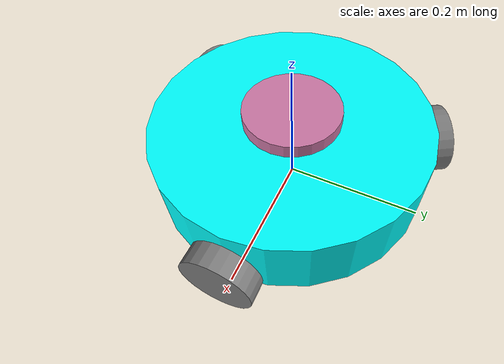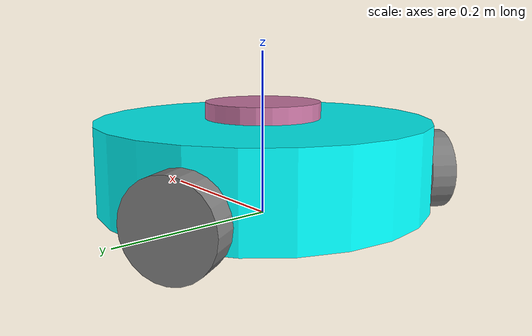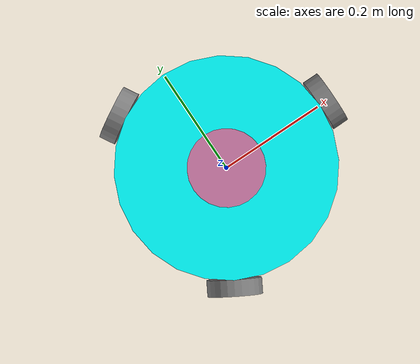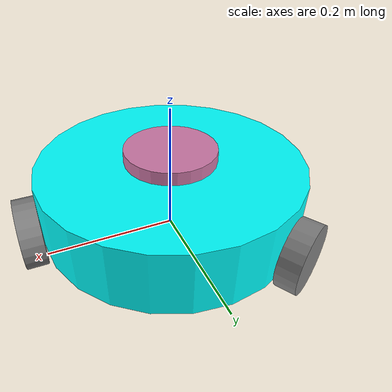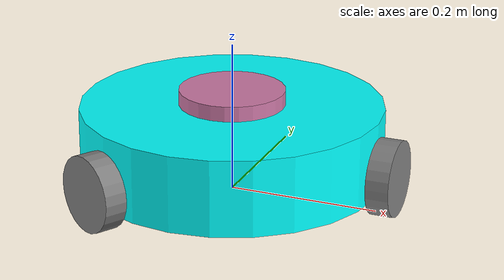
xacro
<?xml version="1.0"?>
<robot name="mobile_bot" xmlns:xacro="http://ros.org/wiki/xacro">
    <!-- Define robot constants -->
    <xacro:property name="base_radius" value="0.20"/>
    <xacro:property name="base_height" value="0.10"/>
    <xacro:property name="base_weight" value="5"/>

    <xacro:property name="wheel_radius" value="0.05"/>
    <xacro:property name="wheel_width" value="0.03"/>
    <xacro:property name="wheel_zoff" value="0.02"/>
    <xacro:property name="wheel_weight" value="2"/>

    <xacro:property name="imu_size" value="0.05"/>
    <xacro:property name="imu_weight" value="0.0001"/>

    <xacro:property name="lidar_radius" value="0.07"/>
    <xacro:property name="lidar_height" value="0.02"/>
    <xacro:property name="lidar_weight" value="0.0001"/>

    <!-- Define intertial property macros -->
    <xacro:macro name="box_inertia" params="m w h d">
        <inertial>
            <origin xyz="0 0 0" rpy="0 0 0"/>
            <mass value="${m}"/>
            <inertia ixx="${(m/12) * (h*h + d*d)}" ixy="0.0" ixz="0.0" iyy="${(m/12) * (w*w + d*d)}" iyz="0.0" izz="${(m/12) * (w*w + h*h)}"/>
        </inertial>
    </xacro:macro>

    <xacro:macro name="cylinder_inertia" params="m r h">
        <inertial>
            <origin xyz="0 0 0" rpy="${pi/2} 0 0"/>
            <mass value="${m}"/>
            <inertia ixx="${(m/12) * (3*r*r + h*h)}" ixy = "0" ixz = "0" iyy="${(m/12) * (3*r*r + h*h)}" iyz = "0" izz="${(m/2) * (r*r)}"/>
        </inertial>
    </xacro:macro>

    <!-- Robot Footprint -->
    <link name="base_footprint">
        <origin xyz="0 0 0"/>
    </link>

    <!-- Base Link -->
    <link name="base_link">
        <visual>
            <origin xyz="0 0 0" rpy="0 0 0"/>
            <geometry>
                <cylinder radius="${base_radius}" length="${base_height}"/>
            </geometry>
            <material name="Cyan">
                <color rgba="0 1.0 1.0 1.0"/>
            </material>
        </visual>
        <collision>
            <origin xyz="0 0 0" rpy="0 0 0"/>
            <geometry>
                <cylinder radius="${base_radius}" length="${base_height}"/>
            </geometry>
        </collision>
        <xacro:cylinder_inertia m="${base_weight}" r="${base_radius}" h="${base_height}"/>
    </link>

    <joint name="base_joint" type="fixed">
        <parent link="base_footprint"/>
        <child link="base_link"/>
        <origin xyz="0 0 ${wheel_radius+wheel_zoff}" rpy="0 0 0"/>
    </joint>

    <!-- Drive Wheels -->
    <xacro:macro name="drive_wheel" params="prefix distance angle">
        <link name="${prefix}_link">
            <visual>
                <origin xyz="0 0 0" rpy="0 ${pi/2} 0"/>
                <geometry>
                    <cylinder radius="${wheel_radius}" length="${wheel_width}"/>
                </geometry>
                <material name="Gray">
                <color rgba="0.5 0.5 0.5 1.0"/>
                </material>
            </visual>
            <collision>
                <origin xyz="0 0 0" rpy="0 ${pi/2} 0"/>
                <geometry>
                <cylinder radius="${wheel_radius}" length="${wheel_width}"/>
                </geometry>
            </collision>
            <xacro:cylinder_inertia m="${wheel_weight}" r="${wheel_radius}" h="${wheel_width}"/>
        </link>

        <joint name="${prefix}_joint" type="fixed">
            <parent link="base_link"/>
            <child link="${prefix}_link"/>
            <origin xyz="${distance*cos(angle)} ${distance*sin(angle)} ${-wheel_zoff}" rpy="0 0 ${angle}"/>
            <axis xyz="0 0 0"/>
        </joint>

        <gazebo reference="${prefix}_link">
            <collision>
                <friction>
                    <ode>
                        <mu>0.0</mu>
                        <mu2>0.0</mu2>
                    </ode>
                </friction>
            </collision>
        </gazebo>
    </xacro:macro>

    <xacro:drive_wheel prefix="drive_wheel_0" distance="${base_radius+wheel_width/2}" angle="0.0"/>
    <xacro:drive_wheel prefix="drive_wheel_120" distance="${base_radius+wheel_width/2}" angle="${2*pi/3}"/>
    <xacro:drive_wheel prefix="drive_wheel_180" distance="${base_radius+wheel_width/2}" angle="${4*pi/3}"/>

    <!-- IMU -->
    <link name="imu_link">
        <visual>
            <origin xyz="0 0 0" rpy="0 0 0"/>
            <geometry>
                <box size="${imu_size} ${imu_size} ${imu_size}"/>
            </geometry>
        </visual>
        <collision>
            <origin xyz="0 0 0" rpy="0 0 0"/>
            <geometry>
                <box size="${imu_size} ${imu_size} ${imu_size}"/>
            </geometry>
        </collision>
        <xacro:box_inertia m="${imu_weight}" w="${imu_size}" d="${imu_size}" h="${imu_size}"/>
    </link>

    <joint name="imu_joint" type="fixed">
        <parent link="base_link"/>
        <child link="imu_link"/>
        <origin xyz="0 0 0"/>
    </joint>

    <gazebo reference="imu_link">
        <sensor name="imu_sensor" type="imu">
            <plugin filename="libgazebo_ros_imu_sensor.so" name="imu_plugin">
                <ros>
                    <remapping>~/out:=imu</remapping>
                </ros>
                <initial_orientation_as_reference>false</initial_orientation_as_reference>
            </plugin>
            <always_on>true</always_on>
            <update_rate>100</update_rate>
            <visualize>true</visualize>
            <imu>
                <angular_velocity>
                    <x>
                        <noise type="gaussian">
                            <mean>0.0</mean>
                            <stddev>2e-4</stddev>
                            <bias_mean>0.0000075</bias_mean>
                            <bias_stddev>0.0000008</bias_stddev>
                        </noise>
                    </x>
                    <y>
                        <noise type="gaussian">
                            <mean>0.0</mean>
                            <stddev>2e-4</stddev>
                            <bias_mean>0.0000075</bias_mean>
                            <bias_stddev>0.0000008</bias_stddev>
                        </noise>
                    </y>
                    <z>
                        <noise type="gaussian">
                            <mean>0.0</mean>
                            <stddev>2e-4</stddev>
                            <bias_mean>0.0000075</bias_mean>
                            <bias_stddev>0.0000008</bias_stddev>
                        </noise>
                    </z>
                </angular_velocity>
                <linear_acceleration>
                    <x>
                        <noise type="gaussian">
                            <mean>0.0</mean>
                            <stddev>1.7e-2</stddev>
                            <bias_mean>0.1</bias_mean>
                            <bias_stddev>0.001</bias_stddev>
                        </noise>
                    </x>
                    <y>
                        <noise type="gaussian">
                            <mean>0.0</mean>
                            <stddev>1.7e-2</stddev>
                            <bias_mean>0.1</bias_mean>
                            <bias_stddev>0.001</bias_stddev>
                        </noise>
                    </y>
                    <z>
                        <noise type="gaussian">
                            <mean>0.0</mean>
                            <stddev>1.7e-2</stddev>
                            <bias_mean>0.1</bias_mean>
                            <bias_stddev>0.001</bias_stddev>
                        </noise>
                    </z>
                </linear_acceleration>
            </imu>
        </sensor>
    </gazebo>

    <!-- Lidar -->
    <link name="lidar_link">
        <visual>
            <origin xyz="0 0 0" rpy="0 0 0"/>
            <geometry>
                <cylinder radius="${lidar_radius}" length="${lidar_height}"/>
            </geometry>
        </visual>
        <collision>
            <origin xyz="0 0 0" rpy="0 0 0"/>
            <geometry>
                <cylinder radius="${lidar_radius}" length="${lidar_height}"/>
            </geometry>
        </collision>
        <xacro:cylinder_inertia m="${lidar_weight}" r="${lidar_radius}" h="${lidar_height}"/>
    </link>

    <joint name="lidar_joint" type="fixed">
        <parent link="base_link"/>
        <child link="lidar_link"/>
        <origin xyz="0 0 ${(base_height/2)+(lidar_height/2)}" rpy="0 0 0"/>
    </joint>

    <gazebo reference="lidar_link">
        <sensor name="lidar" type="ray">
            <always_on>true</always_on>
            <visualize>true</visualize>
            <update_rate>5</update_rate>
            <ray>
                <scan>
                    <horizontal>
                        <samples>360</samples>
                        <resolution>1.000000</resolution>
                        <min_angle>0.000000</min_angle>
                        <max_angle>6.280000</max_angle>
                    </horizontal>
                </scan>
                    <range>
                    <min>0.120000</min>
                    <max>6.0</max>
                    <resolution>0.015000</resolution>
                    </range>
                <noise>
                    <type>gaussian</type>
                    <mean>0.0</mean>
                    <stddev>0.01</stddev>
                </noise>
            </ray>
            <plugin name="scan" filename="libgazebo_ros_ray_sensor.so">
                <ros>
                    <remapping>~/out:=scan</remapping>
                </ros>
                <output_type>sensor_msgs/LaserScan</output_type>
                <frame_name>lidar_link</frame_name>
            </plugin>
        </sensor>
    </gazebo>

    <gazebo>
        <plugin name="object_controller" filename="libgazebo_ros_planar_move.so">
            <command_topic>cmd_vel</command_topic>
            <odometry_topic>odom</odometry_topic>
            <odometry_frame>odom</odometry_frame>
            <odometry_rate>20.0</odometry_rate>
            <robot_base_frame>base_footprint</robot_base_frame>
        </plugin>
    </gazebo>

</robot>
